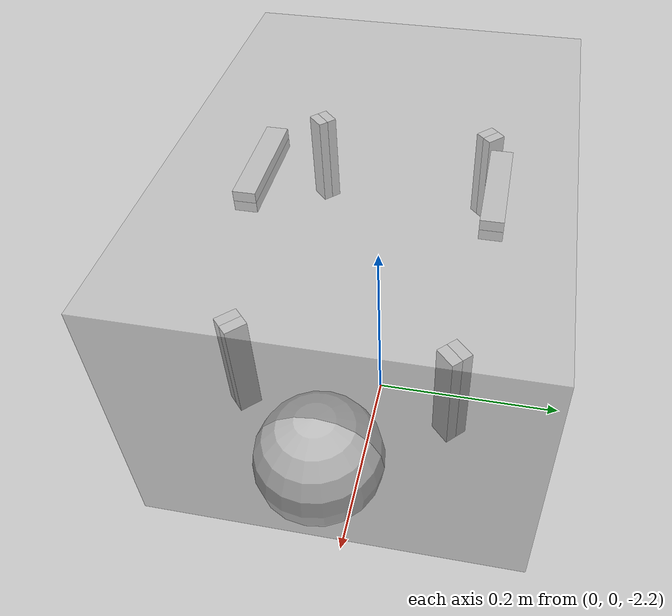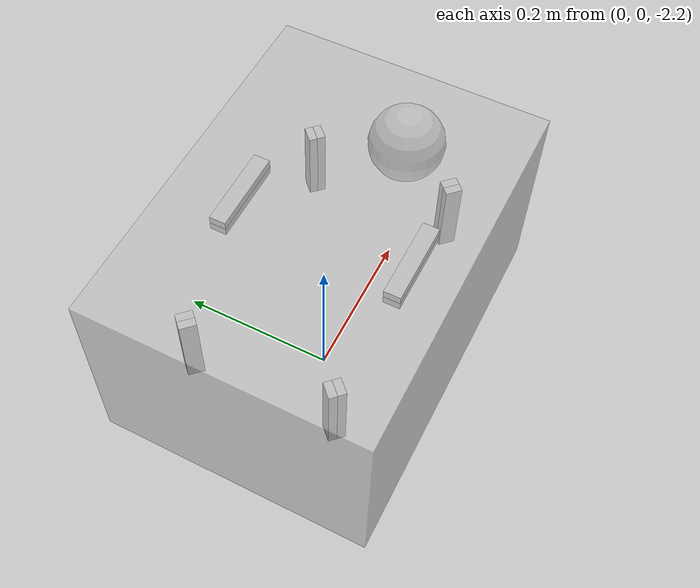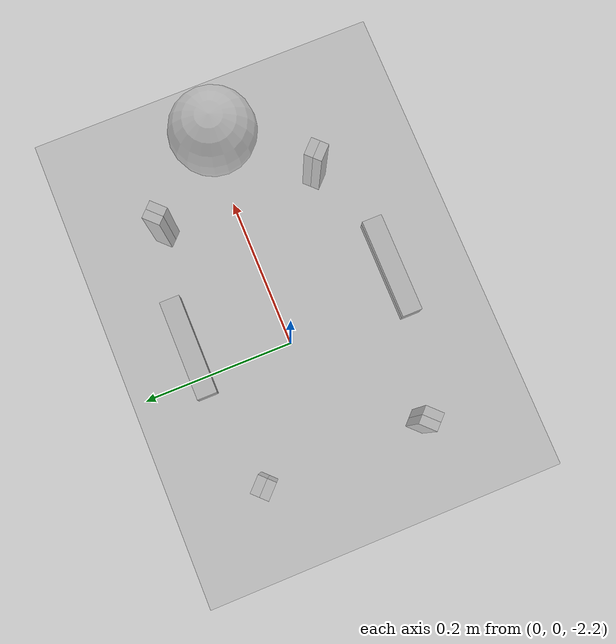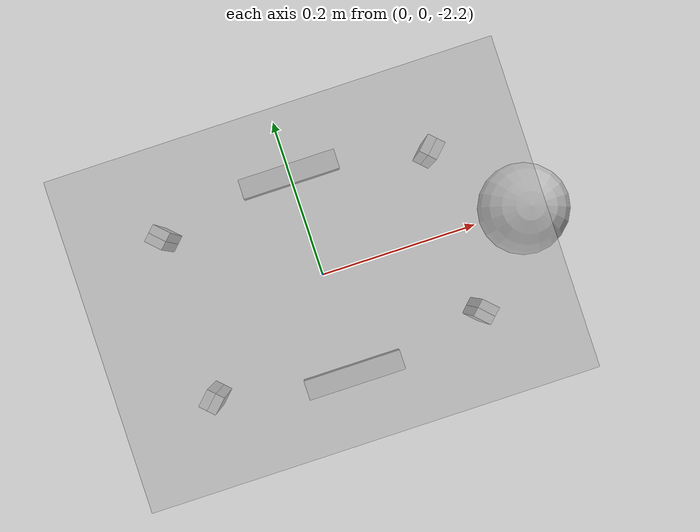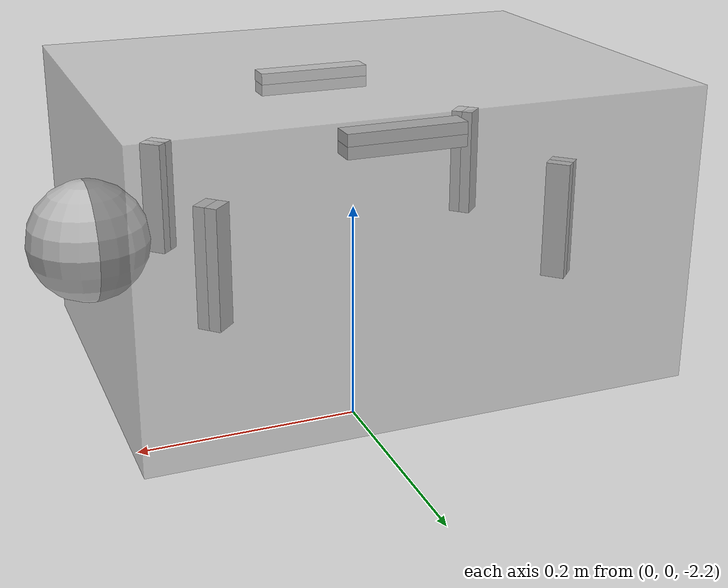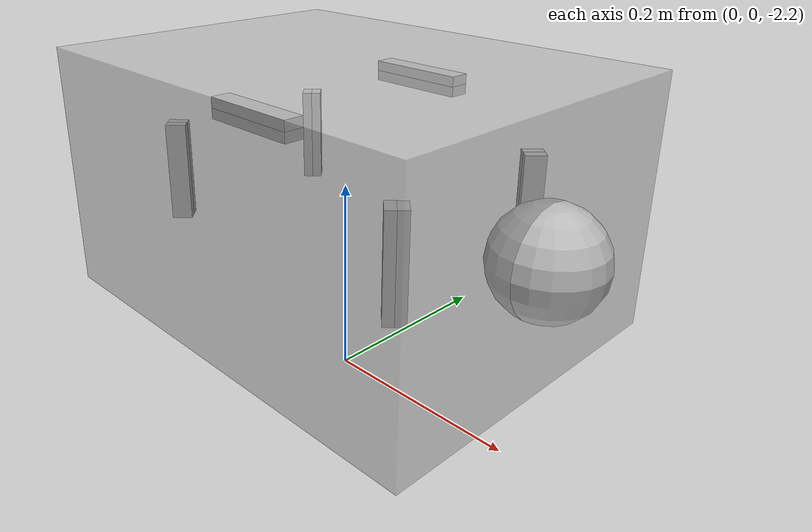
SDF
<sdf version="1.6">
 <world name="underwater">
  <plugin filename="gz-sim-physics-system" name="gz::sim::systems::Physics"/>
  <plugin filename="gz-sim-user-commands-system" name="gz::sim::systems::UserCommands"/>
  <plugin filename="gz-sim-scene-broadcaster-system" name="gz::sim::systems::SceneBroadcaster"/>
  <plugin filename="libgz-sim-imu-system.so" name="gz::sim::systems::Imu"/>
  <plugin filename="gz-sim-buoyancy-system" name="gz::sim::systems::Buoyancy">
   <graded_buoyancy>
    <default_density>1000</default_density>
    <density_change><above_depth>0</above_depth><density>1</density></density_change>
   </graded_buoyancy>
   <enable>bluerov2</enable>
  </plugin>
  <plugin filename="gz-sim-sensors-system" name="gz::sim::systems::Sensors">
   <render_engine>ogre2</render_engine>
  </plugin>
  <include><uri>https://fuel.gazebosim.org/1.0/OpenRobotics/models/Sun</uri></include>
  <include><uri>model://bluerov2</uri><pose>0 0 -2 0 0 0</pose></include>
 </world>
</sdf>

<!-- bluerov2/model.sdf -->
<sdf version="1.6">
  <model name="bluerov2">
    <pose>0 0 0 0 0 0</pose>

    <!-- BlueROV2 thruster reference: http://www.ardusub.com/introduction/features.html -->
    <!-- fluid_density: 1000 -->
    <!-- displaced_mass: 10.05 -->

    <link name="base_link">
      <inertial>
        <pose>0 0 0.011 0 0 0</pose>
        <mass>10</mass>
        <inertia>
          <ixx>0.09873097998042396</ixx>
          <ixy>0</ixy>
          <ixz>0</ixz>
          <iyy>0.17756847998042397</iyy>
          <iyz>0</iyz>
          <izz>0.2692441666666667</izz>
        </inertia>
      </inertial>

      <visual name="base_link_box">
        <pose>0 0 0 0 0 0</pose>
        <transparency>0.5</transparency>
        <geometry>
          <box>
            <size>0.457 0.338 0.25</size>
          </box>
        </geometry>
      </visual>

      <visual name="base_link_dome">
        <pose>0.2285 0 0 0 0 0</pose>
        <geometry>
          <sphere>
            <radius>0.05</radius>
          </sphere>
        </geometry>
        <material>
          <emissive>0 1 0 0</emissive>
        </material>
      </visual>

      <!-- Collision volume * fluid_density == displaced mass, used by BuoyancyPlugin -->
      <collision name="base_link_collision">
        <pose>0 0 0.06 0 0 0</pose>
        <geometry>
          <box>
            <size>0.457 0.338 0.06506286173008947</size>
          </box>
        </geometry>
      </collision>

      <!-- IMU sensor gyro and accel data will be sent to ArduSub -->
      <sensor name="imu_sensor" type="imu">
        <!-- Transform from the Gazebo body frame (x-forward, y-left, z-up)
             to the ArduPilot body frame (x-forward, y-right, z-down) -->
        <pose>0 0 0 3.141592653589793 0 0</pose>
        <always_on>1</always_on>
        <update_rate>1000.0</update_rate>
      </sensor>

    </link>

    <plugin
        filename="ignition-gazebo-pose-publisher-system"
        name="ignition::gazebo::systems::PosePublisher">
      <publish_link_pose>false</publish_link_pose>
      <publish_collision_pose>false</publish_collision_pose>
      <publish_visual_pose>false</publish_visual_pose>
      <publish_sensor_pose>false</publish_sensor_pose>
      <publish_nested_model_pose>true</publish_nested_model_pose>
      <update_frequency>20</update_frequency>
    </plugin>

    <!-- Hydrodynamics plugin -->
    <plugin
        filename="gz-sim-hydrodynamics-system"
        name="gz::sim::systems::Hydrodynamics">
      <link_name>base_link</link_name>
      <water_density>1000</water_density>
      <!-- Added mass: -->
      <xDotU>0</xDotU>
      <yDotV>0</yDotV>
      <zDotW>0</zDotW>
      <kDotP>0</kDotP>
      <mDotQ>0</mDotQ>
      <nDotR>0</nDotR>
      <!-- First order stability derivative: -->
      <xU>0</xU>
      <yV>0</yV>
      <zW>0</zW>
      <kP>0</kP>
      <mQ>0</mQ>
      <nR>0</nR>
      <!-- Second order stability derivative: -->
      <xUabsU>-33.800000000000004</xUabsU>
      <yVabsV>-54.26875</yVabsV>
      <zWabsW>-73.37135</zWabsW>
      <kPabsP>-4.0</kPabsP>
      <mQabsQ>-4.0</mQabsQ>
      <nRabsR>-4.0</nRabsR>
    </plugin>

    <link name="thruster1">
      <pose>0.15 -0.09 0 -1.5707963267948966 1.5707963267948966 -0.7853981633974483</pose>
      <visual name="thruster_front">
        <pose>0 0 0.005 0 0 0</pose>
        <geometry>
          <box>
            <size>0.1 0.02 0.01</size>
          </box>
        </geometry>
        <material>
          <emissive>0 0 1 0</emissive>
        </material>
      </visual>
      <visual name="thruster_back">
        <pose>0 0 -0.005 0 0 0</pose>
        <geometry>
          <box>
            <size>0.1 0.02 0.01</size>
          </box>
        </geometry>
        <material>
          <emissive>1 0 0 0</emissive>
        </material>
      </visual>
      <inertial>
        <mass>0.002</mass>
        <inertia>
          <ixx>0.001</ixx>
          <ixy>0</ixy>
          <ixz>0</ixz>
          <iyy>0.001</iyy>
          <iyz>0</iyz>
          <izz>0.001</izz>
        </inertia>
      </inertial>
    </link>

    <link name="thruster2">
      <pose>0.15 0.09 0 -1.5707963267948966 1.5707963267948966 -2.356194490192345</pose>
      <visual name="thruster_front">
        <pose>0 0 0.005 0 0 0</pose>
        <geometry>
          <box>
            <size>0.1 0.02 0.01</size>
          </box>
        </geometry>
        <material>
          <emissive>0 0 1 0</emissive>
        </material>
      </visual>
      <visual name="thruster_back">
        <pose>0 0 -0.005 0 0 0</pose>
        <geometry>
          <box>
            <size>0.1 0.02 0.01</size>
          </box>
        </geometry>
        <material>
          <emissive>1 0 0 0</emissive>
        </material>
      </visual>
      <inertial>
        <mass>0.002</mass>
        <inertia>
          <ixx>0.001</ixx>
          <ixy>0</ixy>
          <ixz>0</ixz>
          <iyy>0.001</iyy>
          <iyz>0</iyz>
          <izz>0.001</izz>
        </inertia>
      </inertial>
    </link>

    <link name="thruster3">
      <pose>-0.15 -0.09 0 -1.5707963267948966 1.5707963267948966 0.7853981633974483</pose>
      <visual name="thruster_front">
        <pose>0 0 0.005 0 0 0</pose>
        <geometry>
          <box>
            <size>0.1 0.02 0.01</size>
          </box>
        </geometry>
        <material>
          <emissive>0 0 1 0</emissive>
        </material>
      </visual>
      <visual name="thruster_back">
        <pose>0 0 -0.005 0 0 0</pose>
        <geometry>
          <box>
            <size>0.1 0.02 0.01</size>
          </box>
        </geometry>
        <material>
          <emissive>1 0 0 0</emissive>
        </material>
      </visual>
      <inertial>
        <mass>0.002</mass>
        <inertia>
          <ixx>0.001</ixx>
          <ixy>0</ixy>
          <ixz>0</ixz>
          <iyy>0.001</iyy>
          <iyz>0</iyz>
          <izz>0.001</izz>
        </inertia>
      </inertial>
    </link>

    <link name="thruster4">
      <pose>-0.15 0.09 0 -1.5707963267948966 1.5707963267948966 2.356194490192345</pose>
      <visual name="thruster_front">
        <pose>0 0 0.005 0 0 0</pose>
        <geometry>
          <box>
            <size>0.1 0.02 0.01</size>
          </box>
        </geometry>
        <material>
          <emissive>0 0 1 0</emissive>
        </material>
      </visual>
      <visual name="thruster_back">
        <pose>0 0 -0.005 0 0 0</pose>
        <geometry>
          <box>
            <size>0.1 0.02 0.01</size>
          </box>
        </geometry>
        <material>
          <emissive>1 0 0 0</emissive>
        </material>
      </visual>
      <inertial>
        <mass>0.002</mass>
        <inertia>
          <ixx>0.001</ixx>
          <ixy>0</ixy>
          <ixz>0</ixz>
          <iyy>0.001</iyy>
          <iyz>0</iyz>
          <izz>0.001</izz>
        </inertia>
      </inertial>
    </link>

    <link name="thruster5">
      <pose>0 -0.105 0.09 0 0 0</pose>
      <visual name="thruster_front">
        <pose>0 0 0.005 0 0 0</pose>
        <geometry>
          <box>
            <size>0.1 0.02 0.01</size>
          </box>
        </geometry>
        <material>
          <emissive>0 0 1 0</emissive>
        </material>
      </visual>
      <visual name="thruster_back">
        <pose>0 0 -0.005 0 0 0</pose>
        <geometry>
          <box>
            <size>0.1 0.02 0.01</size>
          </box>
        </geometry>
        <material>
          <emissive>1 0 0 0</emissive>
        </material>
      </visual>
      <inertial>
        <mass>0.002</mass>
        <inertia>
          <ixx>0.001</ixx>
          <ixy>0</ixy>
          <ixz>0</ixz>
          <iyy>0.001</iyy>
          <iyz>0</iyz>
          <izz>0.001</izz>
        </inertia>
      </inertial>
    </link>

    <link name="thruster6">
      <pose>0 0.105 0.09 0 0 0</pose>
      <visual name="thruster_front">
        <pose>0 0 0.005 0 0 0</pose>
        <geometry>
          <box>
            <size>0.1 0.02 0.01</size>
          </box>
        </geometry>
        <material>
          <emissive>0 0 1 0</emissive>
        </material>
      </visual>
      <visual name="thruster_back">
        <pose>0 0 -0.005 0 0 0</pose>
        <geometry>
          <box>
            <size>0.1 0.02 0.01</size>
          </box>
        </geometry>
        <material>
          <emissive>1 0 0 0</emissive>
        </material>
      </visual>
      <inertial>
        <mass>0.002</mass>
        <inertia>
          <ixx>0.001</ixx>
          <ixy>0</ixy>
          <ixz>0</ixz>
          <iyy>0.001</iyy>
          <iyz>0</iyz>
          <izz>0.001</izz>
        </inertia>
      </inertial>
    </link>

    <joint name="thruster1_joint" type="revolute">
      <parent>base_link</parent>
      <child>thruster1</child>
      <axis>
        <xyz>0 0 -1</xyz>
      </axis>
    </joint>

    <joint name="thruster2_joint" type="revolute">
      <parent>base_link</parent>
      <child>thruster2</child>
      <axis>
        <xyz>0 0 -1</xyz>
      </axis>
    </joint>

    <joint name="thruster3_joint" type="revolute">
      <parent>base_link</parent>
      <child>thruster3</child>
      <axis>
        <xyz>0 0 -1</xyz>
      </axis>
    </joint>

    <joint name="thruster4_joint" type="revolute">
      <parent>base_link</parent>
      <child>thruster4</child>
      <axis>
        <xyz>0 0 -1</xyz>
      </axis>
    </joint>

    <joint name="thruster5_joint" type="revolute">
      <parent>base_link</parent>
      <child>thruster5</child>
      <axis>
        <xyz>0 0 -1</xyz>
      </axis>
    </joint>

    <joint name="thruster6_joint" type="revolute">
      <parent>base_link</parent>
      <child>thruster6</child>
      <axis>
        <xyz>0 0 -1</xyz>
      </axis>
    </joint>

    <plugin
        filename="gz-sim-thruster-system"
        name="gz::sim::systems::Thruster">
      <namespace>bluerov2</namespace>
      <joint_name>thruster1_joint</joint_name>
      <thrust_coefficient>0.02</thrust_coefficient>
      <fluid_density>1000</fluid_density>
      <propeller_diameter>0.1</propeller_diameter>
      <velocity_control>true</velocity_control>
      <use_angvel_cmd>False</use_angvel_cmd>
    </plugin>

    <plugin
        filename="gz-sim-thruster-system"
        name="gz::sim::systems::Thruster">
      <namespace>bluerov2</namespace>
      <joint_name>thruster2_joint</joint_name>
      <thrust_coefficient>0.02</thrust_coefficient>
      <fluid_density>1000</fluid_density>
      <propeller_diameter>0.1</propeller_diameter>
      <velocity_control>true</velocity_control>
      <use_angvel_cmd>False</use_angvel_cmd>
    </plugin>

    <plugin
        filename="gz-sim-thruster-system"
        name="gz::sim::systems::Thruster">
      <namespace>bluerov2</namespace>
      <joint_name>thruster3_joint</joint_name>
      <!-- Reverse spin to balance torque -->
      <thrust_coefficient>-0.02</thrust_coefficient>
      <fluid_density>1000</fluid_density>
      <propeller_diameter>0.1</propeller_diameter>
      <velocity_control>true</velocity_control>
      <use_angvel_cmd>False</use_angvel_cmd>
    </plugin>

    <plugin
        filename="gz-sim-thruster-system"
        name="gz::sim::systems::Thruster">
      <namespace>bluerov2</namespace>
      <joint_name>thruster4_joint</joint_name>
      <!-- Reverse spin to balance torque -->
      <thrust_coefficient>-0.02</thrust_coefficient>
      <fluid_density>1000</fluid_density>
      <propeller_diameter>0.1</propeller_diameter>
      <velocity_control>true</velocity_control>
      <use_angvel_cmd>False</use_angvel_cmd>
    </plugin>

    <plugin
        filename="gz-sim-thruster-system"
        name="gz::sim::systems::Thruster">
      <namespace>bluerov2</namespace>
      <joint_name>thruster5_joint</joint_name>
      <thrust_coefficient>0.02</thrust_coefficient>
      <fluid_density>1000</fluid_density>
      <propeller_diameter>0.1</propeller_diameter>
      <velocity_control>true</velocity_control>
      <use_angvel_cmd>False</use_angvel_cmd>
    </plugin>

    <plugin
        filename="gz-sim-thruster-system"
        name="gz::sim::systems::Thruster">
      <namespace>bluerov2</namespace>
      <joint_name>thruster6_joint</joint_name>
      <!-- Reverse spin to balance torque -->
      <thrust_coefficient>-0.02</thrust_coefficient>
      <fluid_density>1000</fluid_density>
      <propeller_diameter>0.1</propeller_diameter>
      <velocity_control>true</velocity_control>
      <use_angvel_cmd>False</use_angvel_cmd>
    </plugin>

    <plugin name="ArduPilotPlugin" filename="libArduPilotPlugin.so">
      <!-- Port settings -->
      <fdm_addr>127.0.0.1</fdm_addr>
      <fdm_port_in>9002</fdm_port_in>
      <connectionTimeoutMaxCount>5</connectionTimeoutMaxCount>
      <lock_step>1</lock_step>

      <!-- Transform from the Gazebo body frame (x-forward, y-left, z-up)
           to the ArduPilot body frame (x-forward, y-right, z-down) -->
      <modelXYZToAirplaneXForwardZDown>0 0 0 3.141592653589793 0 0</modelXYZToAirplaneXForwardZDown>

      <!-- Transform from the Gazebo world frame (ENU)
           to the ArduPilot world frame (NED) -->
      <gazeboXYZToNED>0 0 0 3.141592653589793 0 1.5707963267948966</gazeboXYZToNED>

      <!-- Sensors -->
      <imuName>imu_sensor</imuName>

      <!-- Thrusters -->
      <control channel="0">
        <jointName>thruster1_joint</jointName>
        <servo_min>1100</servo_min>
        <servo_max>1900</servo_max>
        <type>COMMAND</type>
        <cmd_topic>/model/bluerov2/joint/thruster1_joint/cmd_thrust</cmd_topic>
        <offset>-0.5</offset>
        <multiplier>100</multiplier>
      </control>
      <control channel="1">
        <jointName>thruster2_joint</jointName>
        <servo_min>1100</servo_min>
        <servo_max>1900</servo_max>
        <type>COMMAND</type>
        <cmd_topic>/model/bluerov2/joint/thruster2_joint/cmd_thrust</cmd_topic>
        <offset>-0.5</offset>
        <multiplier>100</multiplier>
      </control>
      <control channel="2">
        <jointName>thruster3_joint</jointName>
        <servo_min>1100</servo_min>
        <servo_max>1900</servo_max>
        <type>COMMAND</type>
        <cmd_topic>/model/bluerov2/joint/thruster3_joint/cmd_thrust</cmd_topic>
        <offset>-0.5</offset>
        <multiplier>100</multiplier>
      </control>
      <control channel="3">
        <jointName>thruster4_joint</jointName>
        <servo_min>1100</servo_min>
        <servo_max>1900</servo_max>
        <type>COMMAND</type>
        <cmd_topic>/model/bluerov2/joint/thruster4_joint/cmd_thrust</cmd_topic>
        <offset>-0.5</offset>
        <multiplier>100</multiplier>
      </control>
      <control channel="4">
        <jointName>thruster5_joint</jointName>
        <servo_min>1100</servo_min>
        <servo_max>1900</servo_max>
        <type>COMMAND</type>
        <cmd_topic>/model/bluerov2/joint/thruster5_joint/cmd_thrust</cmd_topic>
        <offset>-0.5</offset>
        <multiplier>100</multiplier>
      </control>
      <control channel="5">
        <jointName>thruster6_joint</jointName>
        <servo_min>1100</servo_min>
        <servo_max>1900</servo_max>
        <type>COMMAND</type>
        <cmd_topic>/model/bluerov2/joint/thruster6_joint/cmd_thrust</cmd_topic>
        <offset>-0.5</offset>
        <multiplier>100</multiplier>
      </control>

    </plugin>

  </model>
</sdf>
